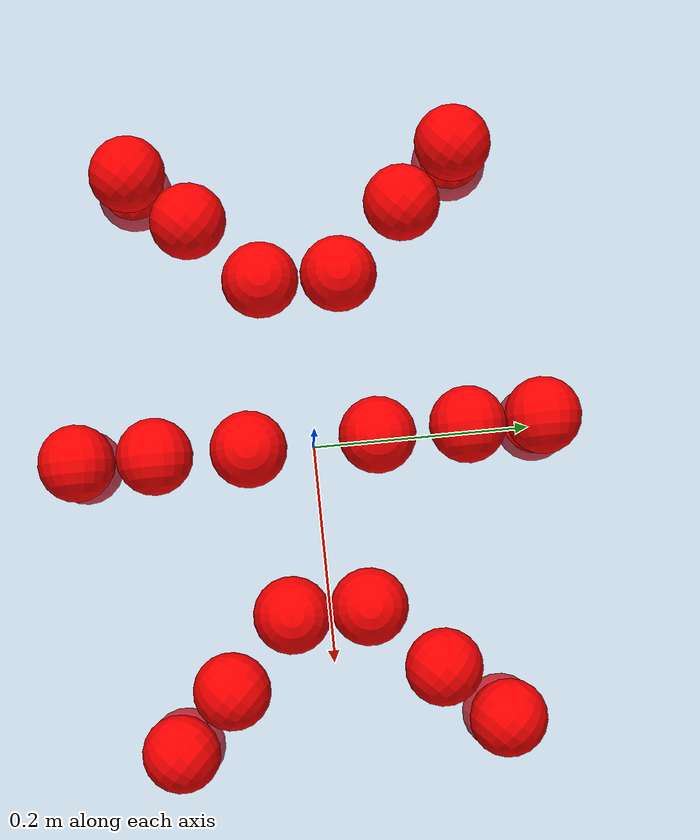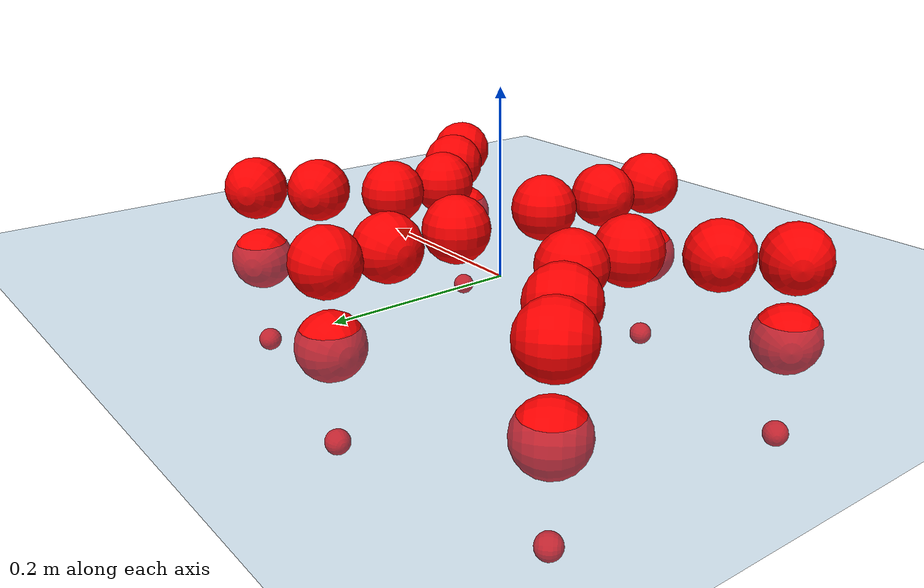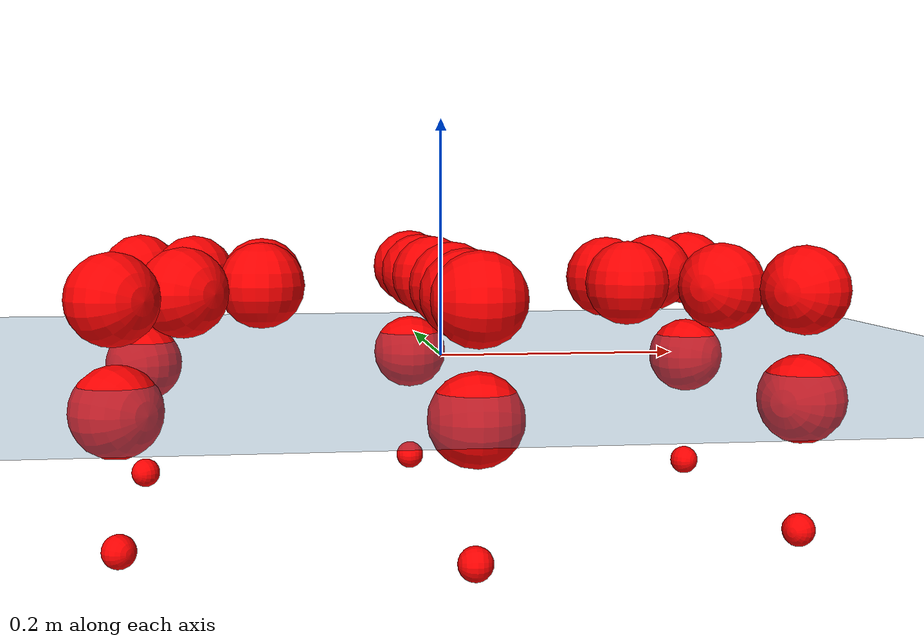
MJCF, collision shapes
<mujoco model="Golem">
  <compiler angle="radian" assetdir="assets" balanceinertia="true" inertiafromgeom="false"/>

  <option timestep="0.005" density="1.2" viscosity="2e-05"/>

  <size nkey="1"/>

  <visual>
    <quality shadowsize="8192"/>
    <map shadowclip="0.5"/>
  </visual>

  <default>
    <default class="/">
      <joint armature="0.01" damping="0.01" frictionloss="0.01"/>
      <geom contype="0" conaffinity="0" group="1" solref="-1000 -80"/>
      <site size="0.01 0.005 0.005" group="5"/>
      <general forcelimited="true" biastype="affine" gainprm="25" biasprm="0 -25 -0.5"/>
      <default class="visual">
        <geom type="mesh" group="2"/>
      </default>
      <default class="collision">
        <geom group="3"/>
      </default>
      <default class="foot">
        <geom size="0.01 0 0" condim="6" group="4" priority="1" solimp="0.015 1 0.01"/>
      </default>
      <default class="reward_collision_sphere">
        <geom group="5" rgba="1 0 0 1"/>
      </default>
    </default>
  </default>

  <asset>
    <texture type="skybox" colorspace="auto" name="//unnamed_texture_0" builtin="gradient" rgb1="0.95 0.95 0.95" rgb2="0.95 0.95 0.95" width="100" height="600"/>
    <texture type="2d" colorspace="auto" name="texplane" builtin="checker" rgb1="0.345 0.575 0.748" rgb2="0.345 0.575 0.748" markrgb="1 1 1" width="512" height="512"/>
    <material name="MatPlane" class="/" texture="texplane" texuniform="true" texrepeat="2 2" specular="0.9"/>
    <mesh name="body" class="/" file="body.stl" scale="0.001 0.001 0.001"/>
    <mesh name="coxa" class="/" file="coxa.stl" scale="0.001 0.001 0.001"/>
    <mesh name="femur" class="/" file="femur.stl" scale="0.001 0.001 0.001"/>
    <mesh name="tibia" class="/" file="tibia.stl" scale="0.001 0.001 0.001"/>
    <mesh name="tarsus" class="/" file="tarsus.stl" scale="0.001 0.001 0.001"/>
  </asset>

  <worldbody>
    <geom name="floor" class="/" size="100 100 0.125" type="plane" group="0" material="MatPlane"/>
    <light name="toplight_shadow" class="/" pos="0 0 5" dir="0.0990148 0.0990148 -0.990148" type="directional" ambient="0.04 0.04 0.04" diffuse="0.55 0.55 0.55" specular="0.12 0.12 0.12"/>
    <light name="toplight_fill" class="/" pos="0 0 5" dir="0.0990148 0.0990148 -0.990148" type="directional" castshadow="false" ambient="0.04 0.04 0.04" diffuse="0.3 0.3 0.3" specular="0.08 0.08 0.08"/>
    <body name="trunk" pos="0.000381033 7.0717e-05 -0.000974558" quat="1 -0.000454579 0.000150469 3.72856e-05">
      <inertial pos="0.000225926 -0.00037342 -0.00417242" quat="0.999989 0.00398244 -0.00222752 0.000841363" mass="2.52096" diaginertia="0.00844396 0.00126929 0.0102696"/>
      <joint name="//unnamed_joint_0" type="free"/>
      <geom name="//unnamed_geom_1" class="/" pos="0 0 0.0642877" quat="1 0 0 0" type="mesh" rgba="0.9 0.9 0.9 1" mesh="body"/>
      <site name="imu" class="/" pos="0.130325 -0.000334245 0.102456" size="0.00876507"/>
      <camera name="track" class="/" pos="0 -1.31886 0" quat="0.707107 0.707107 0 0" mode="trackcom"/>
      <camera name="ego_camera" class="/" pos="0.125528 0 0.100449" quat="-0.5 -0.5 0.5 0.5"/>
      <body name="coxa_RR" pos="-0.172313 -0.0553706 0.0644137" quat="0.3833 0.000516091 -6.05842e-06 -0.923624">
        <inertial pos="-0.00139742 0.000674242 0.000957393" quat="0.999997 0.000414858 -0.00160905 -0.00169118" mass="0.13365" diaginertia="0.00841614 0.00125866 0.0100823"/>
        <joint name="coxa_joint_RR" class="/" pos="0 0 0" axis="-5.19335e-05 -0.000235384 -1" range="-3.11952 3.14594" armature="0.00896953" damping="0.00887147" frictionloss="0.00898099"/>
        <geom name="//unnamed_geom_2" class="/" type="mesh" rgba="0.2 0.2 0.2 1" mesh="coxa"/>
        <geom name="//unnamed_geom_3" class="reward_collision_sphere" size="0.0350603" pos="-0.0289679 0 0"/>
        <body name="femur_RR" pos="0.0561595 -8.31779e-05 -0.000918884" quat="0.499562 -0.50019 0.50019 0.500058">
          <inertial pos="-0.00030404 0.000732843 0.000865827" quat="1 4.96558e-05 -0.000268017 -0.000104431" mass="0.134357" diaginertia="0.00840391 0.00124643 0.0100566"/>
          <joint name="femur_joint_RR" class="/" pos="0 0 0" axis="0.000581999 0.000974481 -0.999999" range="-3.14813 3.13623" armature="0.009175" damping="0.00417155" frictionloss="0.00900973"/>
          <geom name="//unnamed_geom_4" class="/" type="mesh" rgba="0.9 0.9 0.9 1" mesh="femur"/>
          <geom name="//unnamed_geom_5" class="reward_collision_sphere" size="0.0350603"/>
          <body name="tibia_RR" pos="0.000786611 -0.0707303 0.00158809" quat="-4.68566e-07 1 -5.27471e-05 -2.94575e-05">
            <inertial pos="0.000981794 0.000828966 -0.000959216" quat="0.999996 -0.00263603 -1.15941e-05 0.00100039" mass="0.135826" diaginertia="0.00845555 0.00125653 0.0103868"/>
            <joint name="tibia_joint_RR" class="/" pos="0 0 0" axis="-0.000526945 -7.4389e-05 1" range="-3.13849 3.14483" armature="0.0088908" damping="0" frictionloss="0.00899393"/>
            <geom name="//unnamed_geom_6" class="/" type="mesh" rgba="0.2 0.2 0.2 1" mesh="tibia"/>
            <geom name="//unnamed_geom_7" class="reward_collision_sphere" size="0.0350603"/>
            <body name="tarsus_RR" pos="0.082576 -0.00118382 -0.000791408" quat="1 -0.000264148 0.000278726 -0.000203355">
              <inertial pos="0.056609 -0.000819804 -0.00083873" quat="0.500664 0.499197 0.500056 0.500083" mass="0.131759" diaginertia="0.00840705 0.00123725 0.0100852"/>
              <joint name="tarsus_joint_RR" class="/" pos="0 0 0" axis="0.00212725 -0.00081919 0.999997" range="-3.14084 3.13062" armature="0.00885911" damping="0.00117937" frictionloss="0.00856563"/>
              <geom name="//unnamed_geom_8" class="/" type="mesh" rgba="0.9 0.9 0.9 1" mesh="tarsus"/>
              <geom name="foot_1" class="foot" size="0.0084954" pos="0.108147 0 0" quat="0 -0.707107 0 0.707107"/>
              <geom name="//unnamed_geom_10" class="reward_collision_sphere" size="0.0350603"/>
              <geom name="//unnamed_geom_11" class="reward_collision_sphere" size="0.0131476" pos="0.103802 0 0"/>
              <site name="foot_1" class="foot" pos="0.108147 0 0" quat="0 -0.707107 0 0.707107" size="0.00876507"/>
            </body>
          </body>
        </body>
      </body>
      <body name="coxa_RM" pos="0.000441978 -0.0886703 0.0650361" quat="0.707228 -0.000349268 -0.000257711 -0.706985">
        <inertial pos="7.01101e-05 0.000768411 -0.00125677" quat="0.999997 0.000645127 0.00214508 0.000146543" mass="0.134827" diaginertia="0.00842312 0.00124031 0.0101382"/>
        <joint name="coxa_joint_RM" class="/" pos="0 0 0" axis="-0.000482994 0.000189588 -1" range="-3.13967 3.12882" armature="0.00908173" damping="0.0115549" frictionloss="0.00847393"/>
        <geom name="//unnamed_geom_12" class="/" type="mesh" rgba="0.2 0.2 0.2 1" mesh="coxa"/>
        <geom name="//unnamed_geom_13" class="reward_collision_sphere" size="0.0350603" pos="-0.0289679 0 0"/>
        <body name="femur_RM" pos="0.0559494 -0.00160922 -0.00135427" quat="0.499903 -0.500364 0.50035 0.499382">
          <inertial pos="-0.000115354 0.000405735 -0.000299266" quat="0.999984 0.0014413 -0.00286142 -0.00470836" mass="0.134001" diaginertia="0.00846501 0.00126212 0.0102481"/>
          <joint name="femur_joint_RM" class="/" pos="0 0 0" axis="-0.00215881 -0.00297519 -0.999993" range="-3.14599 3.14599" armature="0.00935015" damping="0.0136295" frictionloss="0.0088503"/>
          <geom name="//unnamed_geom_14" class="/" type="mesh" rgba="0.9 0.9 0.9 1" mesh="femur"/>
          <geom name="//unnamed_geom_15" class="reward_collision_sphere" size="0.0350603"/>
          <body name="tibia_RM" pos="-0.00138569 -0.0702329 -0.000654209" quat="-5.30107e-05 1 -4.89606e-07 7.84886e-05">
            <inertial pos="0.000768802 -0.00017833 -0.000662545" quat="1 0.000655226 0.000732957 -0.000177846" mass="0.132765" diaginertia="0.00827178 0.00124233 0.0102831"/>
            <joint name="tibia_joint_RM" class="/" pos="0 0 0" axis="-0.000210468 9.96144e-06 1" range="-3.14367 3.13166" armature="0.00866633" damping="0.00263282" frictionloss="0.00907361"/>
            <geom name="//unnamed_geom_16" class="/" type="mesh" rgba="0.2 0.2 0.2 1" mesh="tibia"/>
            <geom name="//unnamed_geom_17" class="reward_collision_sphere" size="0.0350603"/>
            <body name="tarsus_RM" pos="0.08531 -0.000444565 0.00200104" quat="1 0.000417103 0.000101035 -0.00012289">
              <inertial pos="0.0589178 0.000160365 0.00123096" quat="0.500206 0.500579 0.49996 0.499254" mass="0.134857" diaginertia="0.00838199 0.00124908 0.0102222"/>
              <joint name="tarsus_joint_RM" class="/" pos="0 0 0" axis="-0.0012669 0.00105042 0.999999" range="-3.13465 3.17308" armature="0.00873654" damping="0" frictionloss="0.00862625"/>
              <geom name="//unnamed_geom_18" class="/" type="mesh" rgba="0.9 0.9 0.9 1" mesh="tarsus"/>
              <geom name="foot_2" class="foot" size="0.00857148" pos="0.108147 0 0" quat="0 -0.707107 0 0.707107"/>
              <geom name="//unnamed_geom_20" class="reward_collision_sphere" size="0.0350603"/>
              <geom name="//unnamed_geom_21" class="reward_collision_sphere" size="0.0131476" pos="0.103802 0 0"/>
              <site name="foot_2" class="foot" pos="0.108147 0 0" quat="0 -0.707107 0 0.707107" size="0.00876507"/>
            </body>
          </body>
        </body>
      </body>
      <body name="coxa_RF" pos="0.172833 -0.0551642 0.0638187" quat="0.923888 -0.000232854 0.000476685 -0.382664">
        <inertial pos="0.00101799 -0.000641947 -9.04859e-05" quat="1 7.82914e-05 0.000180821 -8.79181e-05" mass="0.134192" diaginertia="0.0084685 0.00124509 0.0102551"/>
        <joint name="coxa_joint_RF" class="/" pos="0 0 0" axis="-0.00086084 -0.00010711 -1" range="-3.1365 3.12936" armature="0.00872685" damping="0" frictionloss="0.00915069"/>
        <geom name="//unnamed_geom_22" class="/" type="mesh" rgba="0.2 0.2 0.2 1" mesh="coxa"/>
        <geom name="//unnamed_geom_23" class="reward_collision_sphere" size="0.0350603" pos="-0.0289679 0 0"/>
        <body name="femur_RF" pos="0.0573746 0.00172615 0.000790344" quat="0.499362 -0.499766 0.500586 0.500285">
          <inertial pos="0.000731572 -0.000640657 0.0010847" quat="0.999991 -0.00395972 0.000993265 0.000622004" mass="0.13633" diaginertia="0.00850357 0.00127011 0.0103357"/>
          <joint name="femur_joint_RF" class="/" pos="0 0 0" axis="0.00101715 -0.00196613 -0.999998" range="-3.15839 3.12098" armature="0.00853462" damping="0.00926825" frictionloss="0.00889078"/>
          <geom name="//unnamed_geom_24" class="/" type="mesh" rgba="0.9 0.9 0.9 1" mesh="femur"/>
          <geom name="//unnamed_geom_25" class="reward_collision_sphere" size="0.0350603"/>
          <body name="tibia_RF" pos="-4.72981e-05 -0.0710831 0.000514444" quat="4.0615e-05 1 -2.97203e-05 2.10967e-05">
            <inertial pos="-0.000319313 5.40633e-05 9.08616e-05" quat="0.999989 0.00213855 -0.00404082 0.000780908" mass="0.130415" diaginertia="0.0082067 0.00122558 0.0101369"/>
            <joint name="tibia_joint_RF" class="/" pos="0 0 0" axis="-6.52481e-05 -0.000199714 1" range="-3.13647 3.13146" armature="0.00868987" damping="0" frictionloss="0.00879138"/>
            <geom name="//unnamed_geom_26" class="/" type="mesh" rgba="0.2 0.2 0.2 1" mesh="tibia"/>
            <geom name="//unnamed_geom_27" class="reward_collision_sphere" size="0.0350603"/>
            <body name="tarsus_RF" pos="0.084955 -0.00117755 9.73525e-05" quat="1 6.88426e-05 0.000223503 -8.0327e-05">
              <inertial pos="0.0579403 8.89152e-05 -6.86829e-05" quat="0.500109 0.500021 0.50003 0.499839" mass="0.134196" diaginertia="0.00829961 0.00125931 0.0101983"/>
              <joint name="tarsus_joint_RF" class="/" pos="0 0 0" axis="-0.000929961 0.00208097 0.999997" range="-3.13256 3.13577" armature="0.00886319" damping="0" frictionloss="0.00853818"/>
              <geom name="//unnamed_geom_28" class="/" type="mesh" rgba="0.9 0.9 0.9 1" mesh="tarsus"/>
              <geom name="foot_3" class="foot" size="0.00891565" pos="0.108147 0 0" quat="0 -0.707107 0 0.707107"/>
              <geom name="//unnamed_geom_30" class="reward_collision_sphere" size="0.0350603"/>
              <geom name="//unnamed_geom_31" class="reward_collision_sphere" size="0.0131476" pos="0.103802 0 0"/>
              <site name="foot_3" class="foot" pos="0.108147 0 0" quat="0 -0.707107 0 0.707107" size="0.00876507"/>
            </body>
          </body>
        </body>
      </body>
      <body name="coxa_LR" pos="-0.171186 0.0569417 0.06496" quat="0.382643 4.10013e-05 2.99195e-05 0.923896">
        <inertial pos="8.53442e-05 0.00059598 0.000541555" quat="0.999999 -0.000422315 -0.00123979 0.00111909" mass="0.133807" diaginertia="0.00824787 0.00122647 0.0099824"/>
        <joint name="coxa_joint_LR" class="/" pos="0 0 0" axis="0.00342421 0.00167301 -0.999993" range="-3.14112 3.12914" armature="0.00845429" damping="0.00946878" frictionloss="0.00874514"/>
        <geom name="//unnamed_geom_32" class="/" type="mesh" rgba="0.2 0.2 0.2 1" mesh="coxa"/>
        <geom name="//unnamed_geom_33" class="reward_collision_sphere" size="0.0350603" pos="-0.0289679 0 0"/>
        <body name="femur_LR" pos="0.0580989 -0.00285468 0.00024386" quat="0.500095 -0.499987 0.499871 0.500047">
          <inertial pos="-0.000389582 0.000749169 -0.00152216" quat="0.999989 0.00145674 0.00439968 -0.000323526" mass="0.131831" diaginertia="0.00831637 0.00123326 0.0101581"/>
          <joint name="femur_joint_LR" class="/" pos="0 0 0" axis="0.00275167 -0.00638202 0.999976" range="-3.13491 3.13854" armature="0.00846506" damping="0.00422021" frictionloss="0.00853615"/>
          <geom name="//unnamed_geom_34" class="/" type="mesh" rgba="0.9 0.9 0.9 1" mesh="femur"/>
          <geom name="//unnamed_geom_35" class="reward_collision_sphere" size="0.0350603"/>
          <body name="tibia_LR" pos="0.000508434 -0.0722562 -0.0009023" quat="-8.04957e-05 1 -8.11805e-05 -3.04379e-07">
            <inertial pos="-0.000747803 0.000782963 4.07462e-05" quat="1 4.58516e-05 1.73298e-05 0.00023918" mass="0.133459" diaginertia="0.00821647 0.00123542 0.0101741"/>
            <joint name="tibia_joint_LR" class="/" pos="0 0 0" axis="0.0016091 -0.0069408 -0.999975" range="-3.13592 3.10418" armature="0.00949646" damping="0" frictionloss="0.00855664"/>
            <geom name="//unnamed_geom_36" class="/" type="mesh" rgba="0.2 0.2 0.2 1" mesh="tibia"/>
            <geom name="//unnamed_geom_37" class="reward_collision_sphere" size="0.0350603"/>
            <body name="tarsus_LR" pos="0.0847366 0.000871795 0.00200135" quat="1 -0.000102363 -4.35669e-05 1.45189e-05">
              <inertial pos="0.0596816 -0.000196975 -0.00165657" quat="0.500251 0.500108 0.499871 0.49977" mass="0.135542" diaginertia="0.0083798 0.00124738 0.0103291"/>
              <joint name="tarsus_joint_LR" class="/" pos="0 0 0" axis="-0.000126756 0.000444839 -1" stiffness="0.00062127" range="-3.15391 3.15645" armature="0.008868" damping="0" frictionloss="0.00874735"/>
              <geom name="//unnamed_geom_38" class="/" type="mesh" rgba="0.9 0.9 0.9 1" mesh="tarsus"/>
              <geom name="foot_4" class="foot" size="0.00865509" pos="0.108147 0 0" quat="0.707107 0 -0.707107 0"/>
              <geom name="//unnamed_geom_40" class="reward_collision_sphere" size="0.0350603"/>
              <geom name="//unnamed_geom_41" class="reward_collision_sphere" size="0.0131476" pos="0.103802 0 0"/>
              <site name="foot_4" class="foot" pos="0.108147 0 0" quat="0.707107 0 -0.707107 0" size="0.00876507"/>
            </body>
          </body>
        </body>
      </body>
      <body name="coxa_LM" pos="-0.00145985 0.0861812 0.0654832" quat="0.707114 9.60059e-05 -4.31288e-05 0.7071">
        <inertial pos="0.000163415 -0.000865951 0.00202749" quat="0.999989 0.00427326 0.000267203 0.00215078" mass="0.133249" diaginertia="0.00846334 0.00124458 0.0101913"/>
        <joint name="coxa_joint_LM" class="/" pos="0 0 0" axis="-0.000706709 -0.00118273 -0.999999" range="-3.13855 3.15285" armature="0.00817464" damping="0.00836182" frictionloss="0.00881253"/>
        <geom name="//unnamed_geom_42" class="/" type="mesh" rgba="0.2 0.2 0.2 1" mesh="coxa"/>
        <geom name="//unnamed_geom_43" class="reward_collision_sphere" size="0.0350603" pos="-0.0289679 0 0"/>
        <body name="femur_LM" pos="0.053125 0.00157576 -0.000978999" quat="0.499879 -0.500021 0.499901 0.500198">
          <inertial pos="-0.00146189 -0.000935112 0.000581847" quat="1 -4.79841e-05 -8.73113e-06 1.01582e-05" mass="0.131411" diaginertia="0.00834371 0.0012179 0.0100847"/>
          <joint name="femur_joint_LM" class="/" pos="0 0 0" axis="0.00128812 0.00632719 0.999979" range="-3.14002 3.14242" armature="0.0086029" damping="0.00669148" frictionloss="0.00878379"/>
          <geom name="//unnamed_geom_44" class="/" type="mesh" rgba="0.9 0.9 0.9 1" mesh="femur"/>
          <geom name="//unnamed_geom_45" class="reward_collision_sphere" size="0.0350603"/>
          <body name="tibia_LM" pos="-0.00128306 -0.0682649 0.00163968" quat="-0.000134866 1 0.000144187 1.09874e-05">
            <inertial pos="-2.20831e-05 -0.00107578 -0.000191325" quat="1 -7.54675e-05 0.000223408 -8.26026e-05" mass="0.13161" diaginertia="0.00834341 0.00123918 0.0101068"/>
            <joint name="tibia_joint_LM" class="/" pos="0 0 0" axis="-0.000279517 6.31154e-05 -1" range="-3.12959 3.1523" armature="0.00880511" damping="0.00705614" frictionloss="0.00834735"/>
            <geom name="//unnamed_geom_46" class="/" type="mesh" rgba="0.2 0.2 0.2 1" mesh="tibia"/>
            <geom name="//unnamed_geom_47" class="reward_collision_sphere" size="0.0350603"/>
            <body name="tarsus_LM" pos="0.0846423 -0.000276107 0.000315086" quat="1 1.67365e-05 -1.21565e-05 2.71735e-05">
              <inertial pos="0.0591851 -0.000465123 0.000524475" quat="0.499814 0.499951 0.50011 0.500125" mass="0.134189" diaginertia="0.00845994 0.00125566 0.0101877"/>
              <joint name="tarsus_joint_LM" class="/" pos="0 0 0" axis="-0.00248537 -0.00393888 -0.999989" range="-3.13867 3.14412" armature="0.00864921" damping="0.000309705" frictionloss="0.00888413"/>
              <geom name="//unnamed_geom_48" class="/" type="mesh" rgba="0.9 0.9 0.9 1" mesh="tarsus"/>
              <geom name="foot_5" class="foot" size="0.00877531" pos="0.108147 0 0" quat="0.707107 0 -0.707107 0"/>
              <geom name="//unnamed_geom_50" class="reward_collision_sphere" size="0.0350603"/>
              <geom name="//unnamed_geom_51" class="reward_collision_sphere" size="0.0131476" pos="0.103802 0 0"/>
              <site name="foot_5" class="foot" pos="0.108147 0 0" quat="0.707107 0 -0.707107 0" size="0.00876507"/>
            </body>
          </body>
        </body>
      </body>
      <body name="coxa_LF" pos="0.171855 0.0553988 0.0647549" quat="0.923879 5.48244e-06 2.31675e-06 0.382684">
        <inertial pos="0.000165575 2.51993e-05 -0.000608825" quat="0.999987 -0.00114877 -0.000981243 0.00487176" mass="0.134345" diaginertia="0.00857434 0.00124621 0.0102272"/>
        <joint name="coxa_joint_LF" class="/" pos="0 0 0" axis="-0.00160657 -0.00320875 -0.999994" range="-3.12873 3.12514" armature="0.00913145" damping="0.00461513" frictionloss="0.00867696"/>
        <geom name="//unnamed_geom_52" class="/" type="mesh" rgba="0.2 0.2 0.2 1" mesh="coxa"/>
        <geom name="//unnamed_geom_53" class="reward_collision_sphere" size="0.0350603" pos="-0.0289679 0 0"/>
        <body name="femur_LF" pos="0.0564601 0.000838386 -0.000155714" quat="0.499966 -0.49991 0.500021 0.500103">
          <inertial pos="-0.00035845 -0.000528425 0.00033578" quat="0.99999 0.00275108 0.00280311 -0.00222489" mass="0.135535" diaginertia="0.00836252 0.00124889 0.0102428"/>
          <joint name="femur_joint_LF" class="/" pos="0 0 0" axis="0.00581684 0.00248894 0.99998" stiffness="0.000955057" range="-3.15472 3.13955" armature="0.00878891" damping="0" frictionloss="0.0087403"/>
          <geom name="//unnamed_geom_54" class="/" type="mesh" rgba="0.9 0.9 0.9 1" mesh="femur"/>
          <geom name="//unnamed_geom_55" class="reward_collision_sphere" size="0.0350603"/>
          <body name="tibia_LF" pos="-0.000401776 -0.0726996 0.0017093" quat="-6.45029e-05 1 -0.000101992 7.78859e-05">
            <inertial pos="-0.000301648 -0.000137107 -0.000445814" quat="0.999963 0.000925402 -0.0075794 0.00383691" mass="0.136626" diaginertia="0.00843974 0.00125327 0.010301"/>
            <joint name="tibia_joint_LF" class="/" pos="0 0 0" axis="0.00159153 0.00473316 -0.999988" range="-3.13736 3.12006" armature="0.00867031" damping="0.000736227" frictionloss="0.00857587"/>
            <geom name="//unnamed_geom_56" class="/" type="mesh" rgba="0.2 0.2 0.2 1" mesh="tibia"/>
            <geom name="//unnamed_geom_57" class="reward_collision_sphere" size="0.0350603"/>
            <body name="tarsus_LF" pos="0.0846595 -0.000520742 -0.000934545" quat="1 0.000178518 0.000104803 -4.87833e-05">
              <inertial pos="0.0588596 0.0013129 -0.000142654" quat="0.500234 0.499911 0.499959 0.499897" mass="0.131646" diaginertia="0.00828604 0.00122788 0.0100646"/>
              <joint name="tarsus_joint_LF" class="/" pos="0 0 0" axis="-0.00168748 -0.00361708 -0.999992" range="-3.135 3.11956" armature="0.00911823" damping="0.00990937" frictionloss="0.00862949"/>
              <geom name="//unnamed_geom_58" class="/" type="mesh" rgba="0.9 0.9 0.9 1" mesh="tarsus"/>
              <geom name="foot_6" class="foot" size="0.0086006" pos="0.108147 0 0" quat="0.707107 0 -0.707107 0"/>
              <geom name="//unnamed_geom_60" class="reward_collision_sphere" size="0.0350603"/>
              <geom name="//unnamed_geom_61" class="reward_collision_sphere" size="0.0131476" pos="0.103802 0 0"/>
              <site name="foot_6" class="foot" pos="0.108147 0 0" quat="0.707107 0 -0.707107 0" size="0.00876507"/>
            </body>
          </body>
        </body>
      </body>
    </body>
  </worldbody>

  <contact>
    <pair class="/" geom1="floor" geom2="foot_1" name="//unnamed_contact_0"/>
    <pair class="/" geom1="floor" geom2="foot_2" name="//unnamed_contact_1"/>
    <pair class="/" geom1="floor" geom2="foot_3" name="//unnamed_contact_2"/>
    <pair class="/" geom1="floor" geom2="foot_4" name="//unnamed_contact_3"/>
    <pair class="/" geom1="floor" geom2="foot_5" name="//unnamed_contact_4"/>
    <pair class="/" geom1="floor" geom2="foot_6" name="//unnamed_contact_5"/>
  </contact>

  <actuator>
    <general name="coxa_joint_RR" class="/" joint="coxa_joint_RR" forcerange="-6.37215 6.37215" gainprm="21.2121" biasprm="0 -21.2121 -0.452537"/>
    <general name="femur_joint_RR" class="/" joint="femur_joint_RR" forcerange="-6.24051 6.24051" gainprm="21.2121" biasprm="0 -21.2121 -0.452537"/>
    <general name="tibia_joint_RR" class="/" joint="tibia_joint_RR" forcerange="-6.27586 6.27586" gainprm="21.2121" biasprm="0 -21.2121 -0.452537"/>
    <general name="tarsus_joint_RR" class="/" joint="tarsus_joint_RR" forcerange="-6.18918 6.18918" gainprm="21.2121" biasprm="0 -21.2121 -0.452537"/>
    <general name="coxa_joint_RM" class="/" joint="coxa_joint_RM" forcerange="-6.81632 6.81632" gainprm="21.2121" biasprm="0 -21.2121 -0.452537"/>
    <general name="femur_joint_RM" class="/" joint="femur_joint_RM" forcerange="-6.41373 6.41373" gainprm="21.2121" biasprm="0 -21.2121 -0.452537"/>
    <general name="tibia_joint_RM" class="/" joint="tibia_joint_RM" forcerange="-6.18004 6.18004" gainprm="21.2121" biasprm="0 -21.2121 -0.452537"/>
    <general name="tarsus_joint_RM" class="/" joint="tarsus_joint_RM" forcerange="-6.26943 6.26943" gainprm="21.2121" biasprm="0 -21.2121 -0.452537"/>
    <general name="coxa_joint_RF" class="/" joint="coxa_joint_RF" forcerange="-6.45083 6.45083" gainprm="21.2121" biasprm="0 -21.2121 -0.452537"/>
    <general name="femur_joint_RF" class="/" joint="femur_joint_RF" forcerange="-6.38199 6.38199" gainprm="21.2121" biasprm="0 -21.2121 -0.452537"/>
    <general name="tibia_joint_RF" class="/" joint="tibia_joint_RF" forcerange="-6.46677 6.46677" gainprm="21.2121" biasprm="0 -21.2121 -0.452537"/>
    <general name="tarsus_joint_RF" class="/" joint="tarsus_joint_RF" forcerange="-6.3827 6.3827" gainprm="21.2121" biasprm="0 -21.2121 -0.452537"/>
    <general name="coxa_joint_LR" class="/" joint="coxa_joint_LR" forcerange="-6.63066 6.63066" gainprm="21.2121" biasprm="0 -21.2121 -0.452537"/>
    <general name="femur_joint_LR" class="/" joint="femur_joint_LR" forcerange="-6.39999 6.39999" gainprm="21.2121" biasprm="0 -21.2121 -0.452537"/>
    <general name="tibia_joint_LR" class="/" joint="tibia_joint_LR" forcerange="-6.35065 6.35065" gainprm="21.2121" biasprm="0 -21.2121 -0.452537"/>
    <general name="tarsus_joint_LR" class="/" joint="tarsus_joint_LR" forcerange="-6.69013 6.69013" gainprm="21.2121" biasprm="0 -21.2121 -0.452537"/>
    <general name="coxa_joint_LM" class="/" joint="coxa_joint_LM" forcerange="-6.30014 6.30014" gainprm="21.2121" biasprm="0 -21.2121 -0.452537"/>
    <general name="femur_joint_LM" class="/" joint="femur_joint_LM" forcerange="-6.26966 6.26966" gainprm="21.2121" biasprm="0 -21.2121 -0.452537"/>
    <general name="tibia_joint_LM" class="/" joint="tibia_joint_LM" forcerange="-6.58984 6.58984" gainprm="21.2121" biasprm="0 -21.2121 -0.452537"/>
    <general name="tarsus_joint_LM" class="/" joint="tarsus_joint_LM" forcerange="-6.79193 6.79193" gainprm="21.2121" biasprm="0 -21.2121 -0.452537"/>
    <general name="coxa_joint_LF" class="/" joint="coxa_joint_LF" forcerange="-6.46873 6.46873" gainprm="21.2121" biasprm="0 -21.2121 -0.452537"/>
    <general name="femur_joint_LF" class="/" joint="femur_joint_LF" forcerange="-6.49476 6.49476" gainprm="21.2121" biasprm="0 -21.2121 -0.452537"/>
    <general name="tibia_joint_LF" class="/" joint="tibia_joint_LF" forcerange="-6.5457 6.5457" gainprm="21.2121" biasprm="0 -21.2121 -0.452537"/>
    <general name="tarsus_joint_LF" class="/" joint="tarsus_joint_LF" forcerange="-6.62943 6.62943" gainprm="21.2121" biasprm="0 -21.2121 -0.452537"/>
  </actuator>

  <sensor>
    <gyro site="imu" name="imu_angular_velocity"/>
    <velocimeter site="imu" name="imu_linear_velocity"/>
    <framelinvel objtype="site" objname="foot_1" name="foot_1_global_linear_velocity"/>
    <framelinvel objtype="site" objname="foot_2" name="foot_2_global_linear_velocity"/>
    <framelinvel objtype="site" objname="foot_3" name="foot_3_global_linear_velocity"/>
    <framelinvel objtype="site" objname="foot_4" name="foot_4_global_linear_velocity"/>
    <framelinvel objtype="site" objname="foot_5" name="foot_5_global_linear_velocity"/>
    <framelinvel objtype="site" objname="foot_6" name="foot_6_global_linear_velocity"/>
  </sensor>

  <keyframe>
    <key name="home" qpos="0 0 0.1457 1 0 0 0 0 0 0 0 0 0 0 0 0 0 0 0 0 0 0 0 0 0 0 0 0 0 0 0"/>
  </keyframe>
</mujoco>
